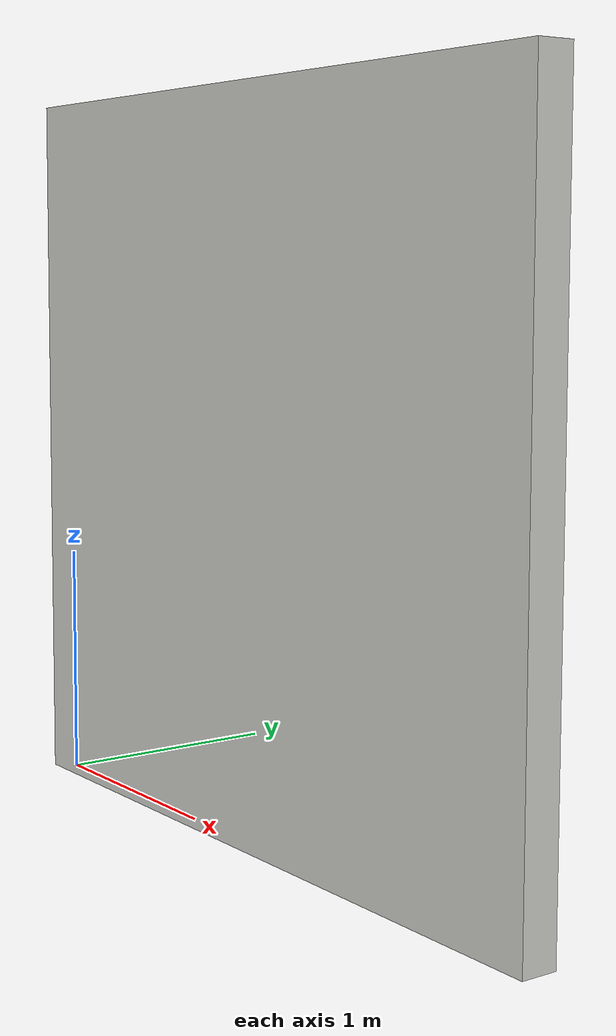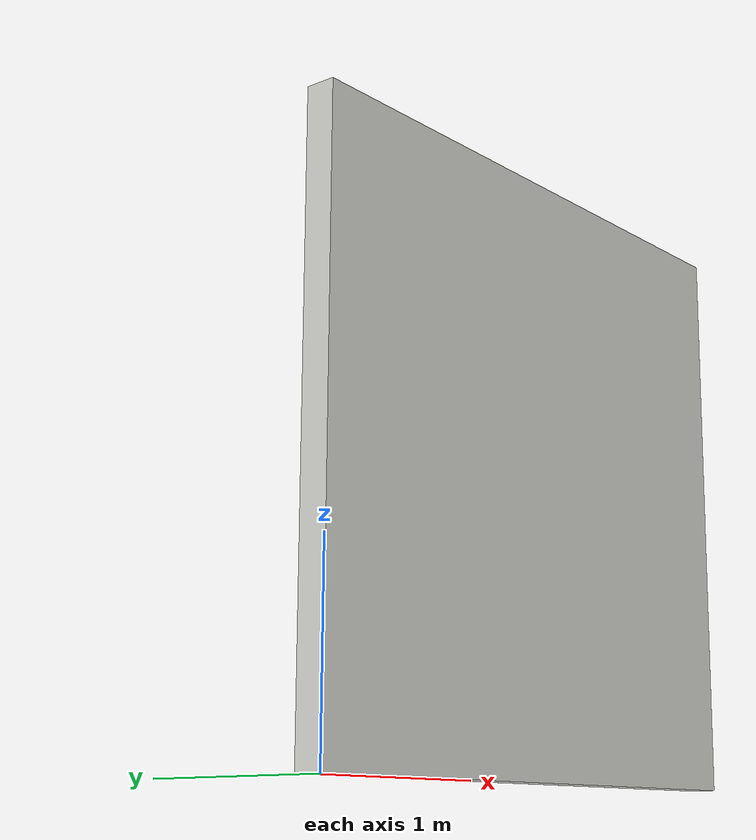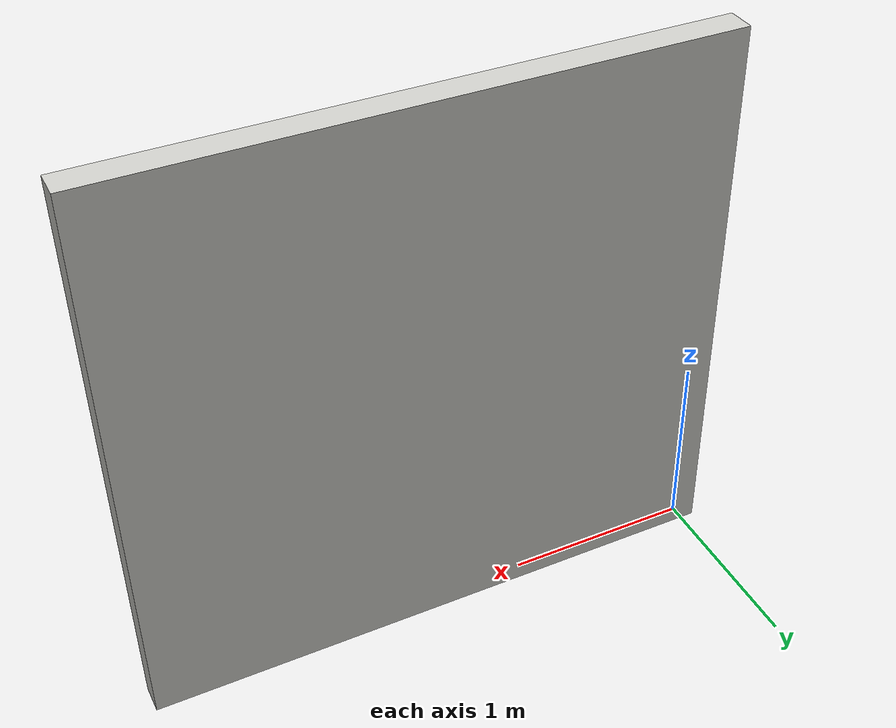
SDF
<?xml version='1.0'?>
<sdf version='1.6'>
  <model name='3m_wall_new'>
    <pose frame=''>1.5 0 0 0 -0 0</pose>
    <link name='Wall_45'>
      <collision name='3m_wall_newc'>
        <geometry>
          <box>
            <size>3.15 0.15 3</size>
          </box>
        </geometry>
        <pose frame=''>0 0 1.5 0 -0 0</pose>
      </collision>
      <visual name='3m_wall_newv'>
        <pose frame=''>0 0 1.5 0 -0 0</pose>
        <geometry>
          <box>
            <size>3.15 0.15 3</size>
          </box>
        </geometry>
        <material>
          <script>
            <uri>file://media/materials/scripts/gazebo.material</uri>
            <name>Gazebo/CeilingTiled</name>
          </script>
          <ambient>1 1 1 1</ambient>
        </material>
        <meta>
          <layer>0</layer>
        </meta>
      </visual>
      <pose frame=''>0 0 0 0 -0 0</pose>
    </link>
    <static>1</static>
  </model>
</sdf>
